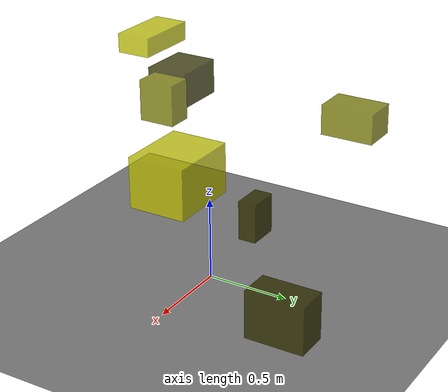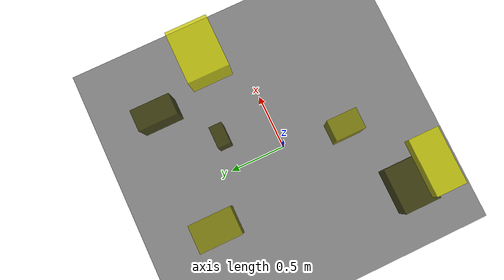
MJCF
<?xml version="1.0"?>
<mujoco model="obstacle_scene">
  <compiler angle="radian" coordinate="local"/>
  <option timestep="0.001" gravity="0 0 -9.81"/>

  <asset>
    <material name="obstacle_mat" rgba="0.8 0.8 0.0 0.8"/>
    <material name="ground_mat" rgba="0.5 0.5 0.5 1"/>
  </asset>

  <worldbody>
    <!-- Ground plane -->
    <geom name="ground" type="plane" size="3 3 0.1" material="ground_mat"/>

    <!-- Obstacles -->
    <body name="obstacle_0" pos="-0.703823 -0.648318 0.884600">
      <geom name="obs_0" type="box" size="0.167599 0.133558 0.110879" rgba="0.2 0.2 0.0 0.8"/>
    </body>
    <body name="obstacle_1" pos="-0.406251 0.700815 1.002414">
      <geom name="obs_1" type="box" size="0.102952 0.155299 0.087874" rgba="0.5 0.5 0.0 0.8"/>
    </body>
    <body name="obstacle_2" pos="0.754942 0.301526 1.025765">
      <geom name="obs_2" type="box" size="0.195381 0.154150 0.134623" rgba="0.8 0.8 0.0 0.8"/>
    </body>
    <body name="obstacle_3" pos="0.223170 0.431331 0.602232">
      <geom name="obs_3" type="box" size="0.087271 0.051867 0.111477" rgba="0.2 0.2 0.0 0.8"/>
    </body>
    <body name="obstacle_4" pos="-0.142440 -0.399039 0.989551">
      <geom name="obs_4" type="box" size="0.077337 0.109598 0.123328" rgba="0.5 0.5 0.0 0.8"/>
    </body>
    <body name="obstacle_5" pos="-0.624395 -0.806206 1.165689">
      <geom name="obs_5" type="box" size="0.204770 0.107765 0.059470" rgba="0.8 0.8 0.0 0.8"/>
    </body>
    <body name="obstacle_6" pos="0.658950 0.847618 0.342022">
      <geom name="obs_6" type="box" size="0.093322 0.170130 0.136355" rgba="0.2 0.2 0.0 0.8"/>
    </body>
  </worldbody>
</mujoco>
